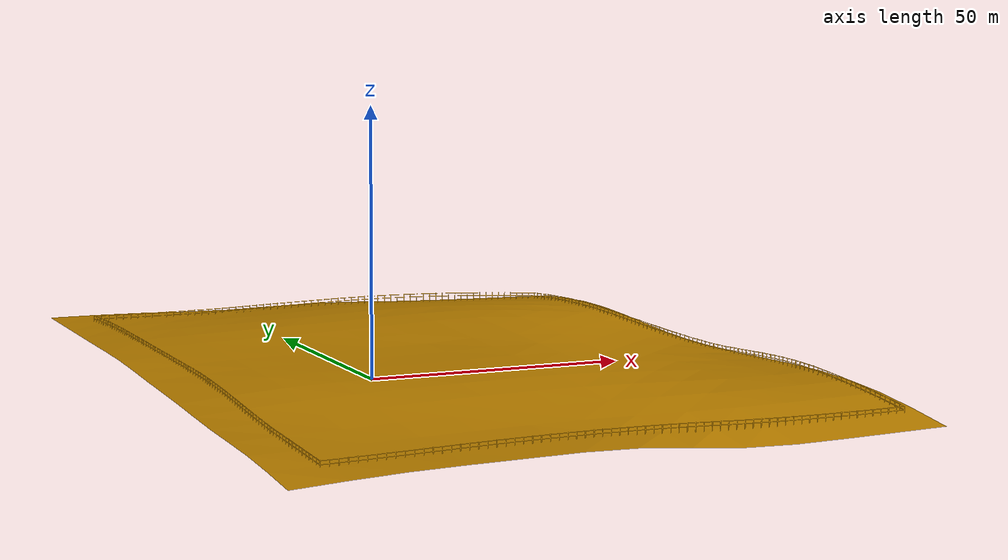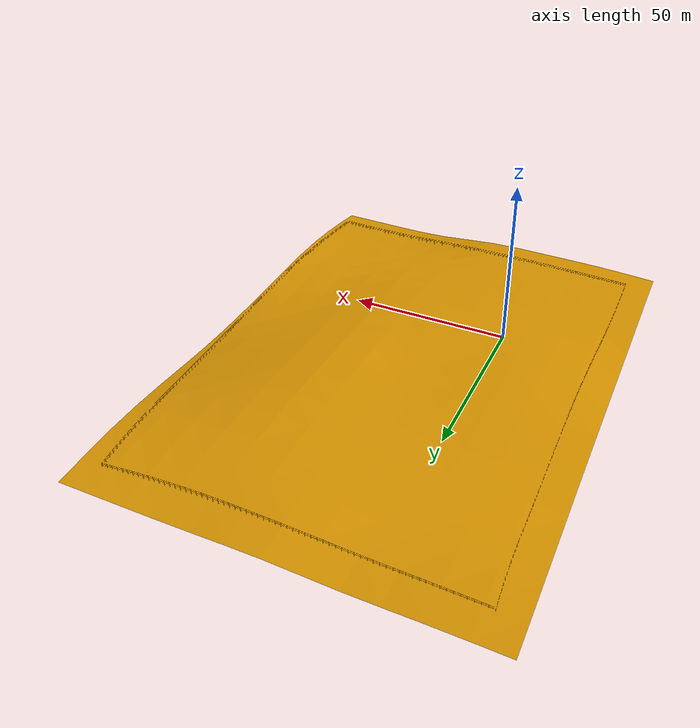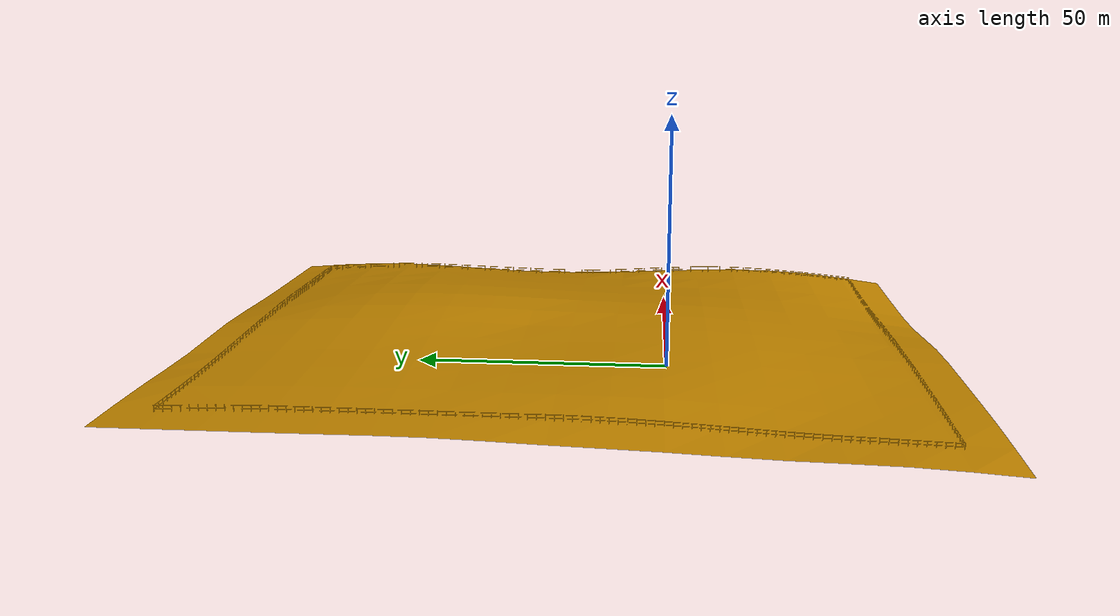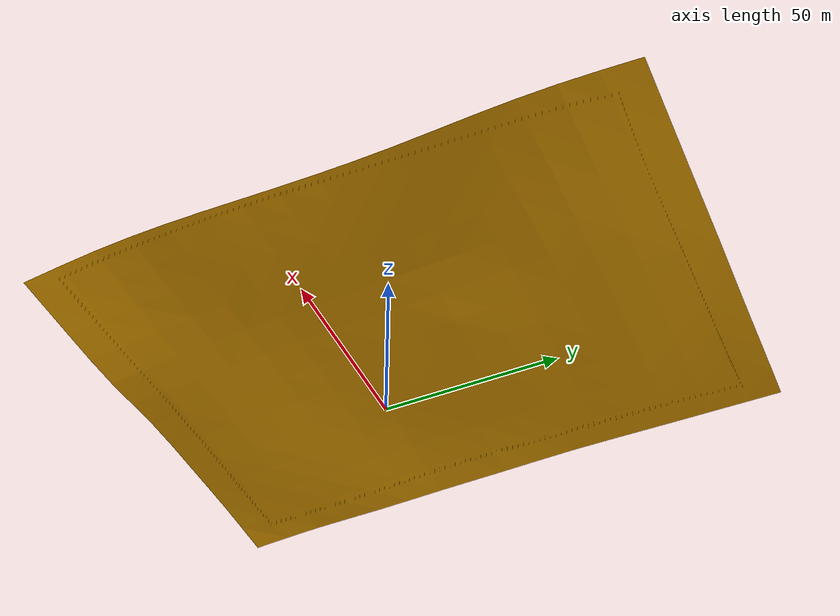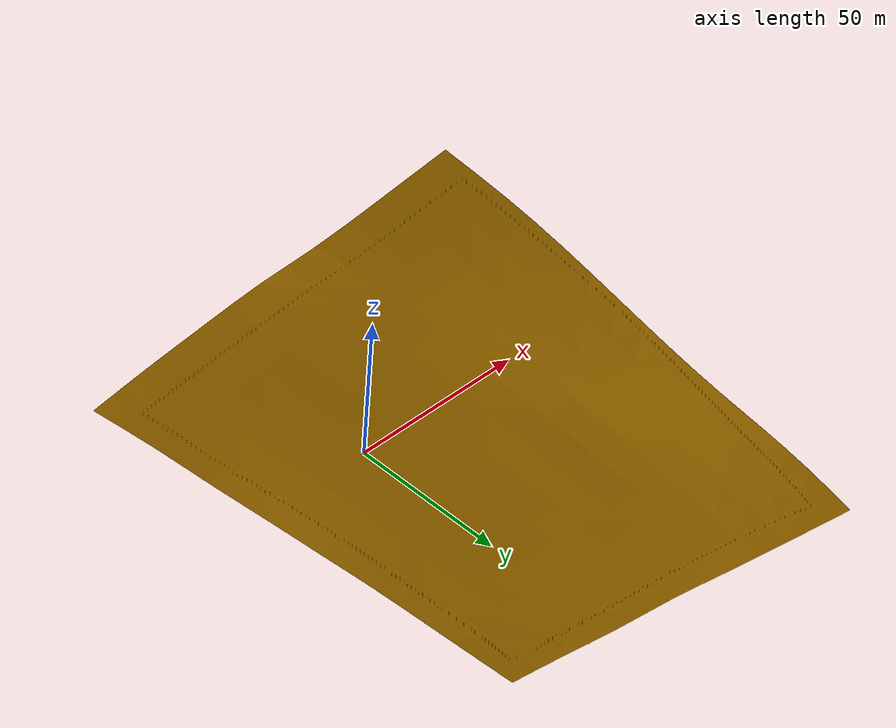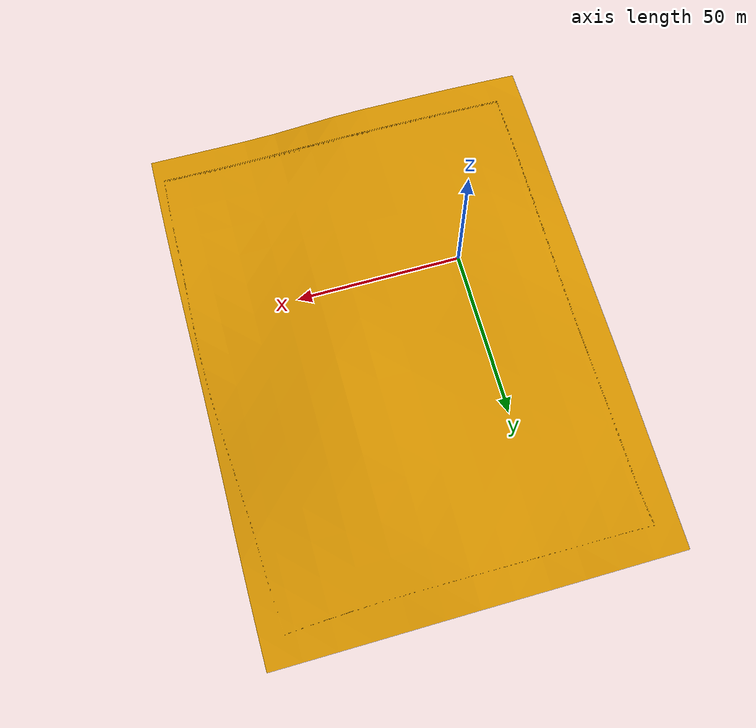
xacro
<?xml version="1.0"?>
<robot name="blueberry_farm" xmlns:xacro="http://www.ros.org/wiki/xacro">
   <link name="blueberry_farm_link">
    <inertial>
      <origin xyz="0 0 0" rpy="0 0 0"/>
      <mass value="1"/>
      <inertia ixx="1" ixy="0" ixz="0" iyy="1" iyz="0" izz="1"/>
    </inertial>
    <visual>
      <origin xyz="0 0 0" rpy="0 0 0"/>
      <geometry>
        <mesh filename="package://blueberry_farm/meshes/agriculture_world.dae"/>
      </geometry>
    </visual>
    <collision>
      <origin xyz="0 0 0" rpy="0 0 0"/>
      <geometry>
        <mesh filename="package://blueberry_farm/meshes/agriculture_world.dae"/>
      </geometry>
      <surface>
        <friction>
          <ode>
            <mu>100</mu>
            <mu2>50</mu2>
          </ode>
        </friction>
    </surface>
    </collision>
  </link>
  <gazebo> <static>true</static></gazebo>
</robot>
